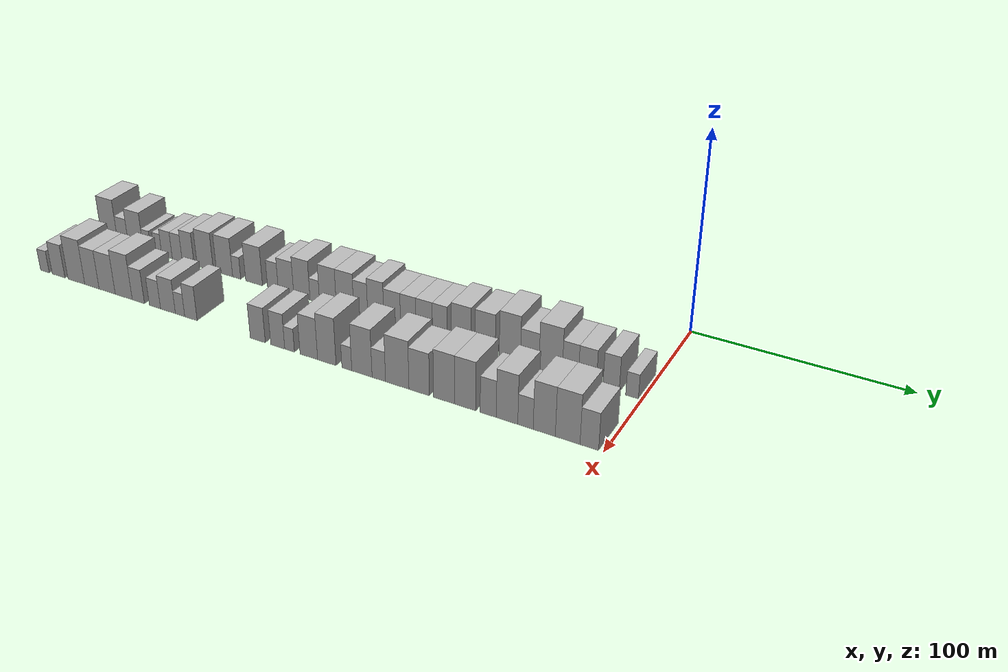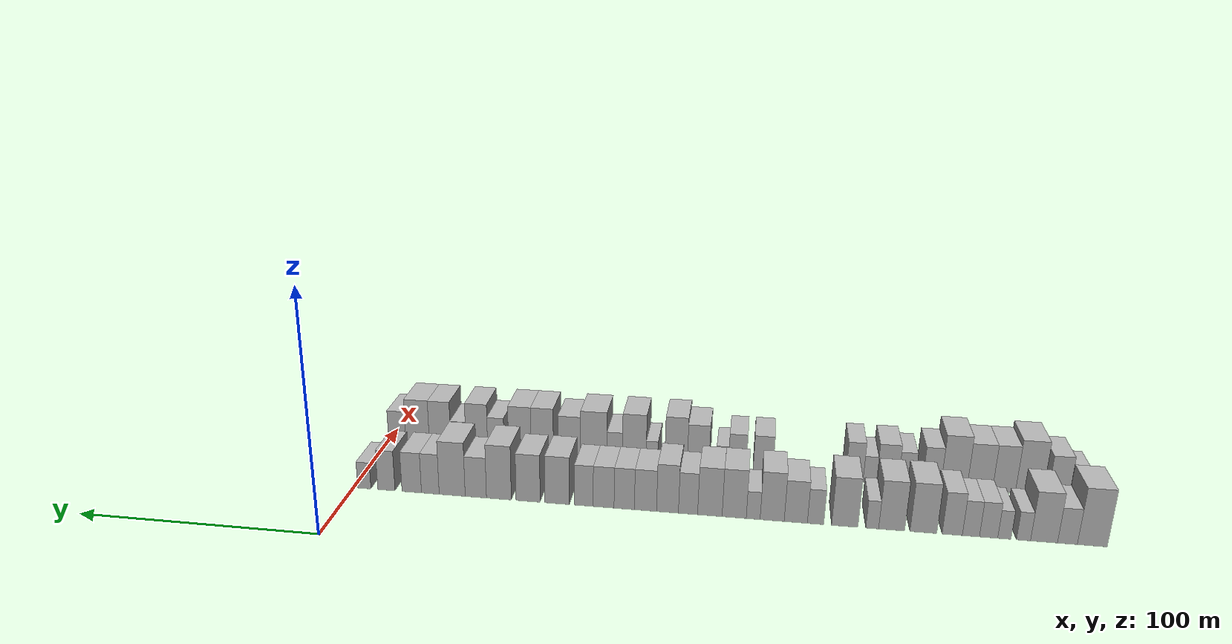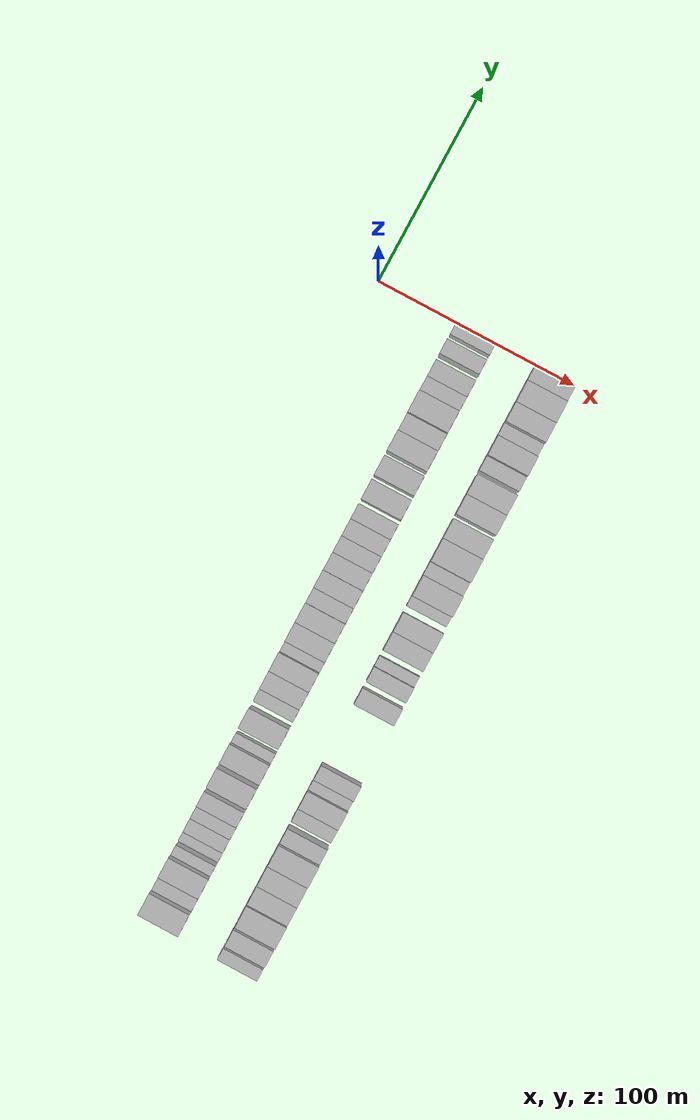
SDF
<sdf version="1.6">
 <world name="default">
  <model name="building_1">
   <static>1</static>
   <pose>50.0000 -291.6410 0 0.000000 0.000000 0.000000</pose>
   <link name="link">
    <pose>0 0 12.00 0 0 0</pose>
    <collision name="collision"><geometry><box><size>20.0000 10.7179 24.0000</size></box></geometry></collision>
    <visual name="visual">
     <cast_shadows>0</cast_shadows>
     <geometry><box><size>20.0000 10.7179 24.0000</size></box></geometry>
     <material>
      <script>
       <uri>model://HANNAS_wall/materials/scripts</uri>
       <uri>model://HANNAS_wall/materials/textures</uri>
       <name>vrc/HANNAS_wall</name>
      </script>
     </material>
    </visual>
   </link>
  </model>
  <model name="building_2">
   <static>1</static>
   <pose>50.0000 -282.6944 0 0.000000 0.000000 0.000000</pose>
   <link name="link">
    <pose>0 0 7.50 0 0 0</pose>
    <collision name="collision"><geometry><box><size>20.0000 7.1753 15.0000</size></box></geometry></collision>
    <visual name="visual">
     <cast_shadows>0</cast_shadows>
     <geometry><box><size>20.0000 7.1753 15.0000</size></box></geometry>
     <material>
      <script>
       <uri>model://HANNAS_wall/materials/scripts</uri>
       <uri>model://HANNAS_wall/materials/textures</uri>
       <name>vrc/HANNAS_wall</name>
      </script>
     </material>
    </visual>
   </link>
  </model>
  <model name="building_3">
   <static>1</static>
   <pose>50.0000 -274.2108 0 0.000000 0.000000 0.000000</pose>
   <link name="link">
    <pose>0 0 10.50 0 0 0</pose>
    <collision name="collision"><geometry><box><size>20.0000 9.7919 21.0000</size></box></geometry></collision>
    <visual name="visual">
     <cast_shadows>0</cast_shadows>
     <geometry><box><size>20.0000 9.7919 21.0000</size></box></geometry>
     <material>
      <script>
       <uri>model://HANNAS_wall/materials/scripts</uri>
       <uri>model://HANNAS_wall/materials/textures</uri>
       <name>vrc/HANNAS_wall</name>
      </script>
     </material>
    </visual>
   </link>
  </model>
  <model name="building_4">
   <static>1</static>
   <pose>50.0000 -266.7639 0 0.000000 0.000000 0.000000</pose>
   <link name="link">
    <pose>0 0 6.00 0 0 0</pose>
    <collision name="collision"><geometry><box><size>20.0000 5.1018 12.0000</size></box></geometry></collision>
    <visual name="visual">
     <cast_shadows>0</cast_shadows>
     <geometry><box><size>20.0000 5.1018 12.0000</size></box></geometry>
     <material>
      <script>
       <uri>model://HANNAS_wall/materials/scripts</uri>
       <uri>model://HANNAS_wall/materials/textures</uri>
       <name>vrc/HANNAS_wall</name>
      </script>
     </material>
    </visual>
   </link>
  </model>
  <model name="building_5">
   <static>1</static>
   <pose>50.0000 -259.7612 0 0.000000 0.000000 0.000000</pose>
   <link name="link">
    <pose>0 0 6.00 0 0 0</pose>
    <collision name="collision"><geometry><box><size>20.0000 4.9035 12.0000</size></box></geometry></collision>
    <visual name="visual">
     <cast_shadows>0</cast_shadows>
     <geometry><box><size>20.0000 4.9035 12.0000</size></box></geometry>
     <material>
      <script>
       <uri>model://HANNAS_wall/materials/scripts</uri>
       <uri>model://HANNAS_wall/materials/textures</uri>
       <name>vrc/HANNAS_wall</name>
      </script>
     </material>
    </visual>
   </link>
  </model>
  <model name="building_6">
   <static>1</static>
   <pose>50.0000 -253.9580 0 0.000000 0.000000 0.000000</pose>
   <link name="link">
    <pose>0 0 7.50 0 0 0</pose>
    <collision name="collision"><geometry><box><size>20.0000 6.7028 15.0000</size></box></geometry></collision>
    <visual name="visual">
     <cast_shadows>0</cast_shadows>
     <geometry><box><size>20.0000 6.7028 15.0000</size></box></geometry>
     <material>
      <script>
       <uri>model://HANNAS_wall/materials/scripts</uri>
       <uri>model://HANNAS_wall/materials/textures</uri>
       <name>vrc/HANNAS_wall</name>
      </script>
     </material>
    </visual>
   </link>
  </model>
  <model name="building_7">
   <static>1</static>
   <pose>50.0000 -247.4439 0 0.000000 0.000000 0.000000</pose>
   <link name="link">
    <pose>0 0 7.50 0 0 0</pose>
    <collision name="collision"><geometry><box><size>20.0000 6.3254 15.0000</size></box></geometry></collision>
    <visual name="visual">
     <cast_shadows>0</cast_shadows>
     <geometry><box><size>20.0000 6.3254 15.0000</size></box></geometry>
     <material>
      <script>
       <uri>model://HANNAS_wall/materials/scripts</uri>
       <uri>model://HANNAS_wall/materials/textures</uri>
       <name>vrc/HANNAS_wall</name>
      </script>
     </material>
    </visual>
   </link>
  </model>
  <model name="building_8">
   <static>1</static>
   <pose>50.0000 -240.5308 0 0.000000 0.000000 0.000000</pose>
   <link name="link">
    <pose>0 0 9.00 0 0 0</pose>
    <collision name="collision"><geometry><box><size>20.0000 7.5007 18.0000</size></box></geometry></collision>
    <visual name="visual">
     <cast_shadows>0</cast_shadows>
     <geometry><box><size>20.0000 7.5007 18.0000</size></box></geometry>
     <material>
      <script>
       <uri>model://HANNAS_wall/materials/scripts</uri>
       <uri>model://HANNAS_wall/materials/textures</uri>
       <name>vrc/HANNAS_wall</name>
      </script>
     </material>
    </visual>
   </link>
  </model>
  <model name="building_9">
   <static>1</static>
   <pose>50.0000 -229.7729 0 0.000000 0.000000 0.000000</pose>
   <link name="link">
    <pose>0 0 10.50 0 0 0</pose>
    <collision name="collision"><geometry><box><size>20.0000 10.0150 21.0000</size></box></geometry></collision>
    <visual name="visual">
     <cast_shadows>0</cast_shadows>
     <geometry><box><size>20.0000 10.0150 21.0000</size></box></geometry>
     <material>
      <script>
       <uri>model://HANNAS_wall/materials/scripts</uri>
       <uri>model://HANNAS_wall/materials/textures</uri>
       <name>vrc/HANNAS_wall</name>
      </script>
     </material>
    </visual>
   </link>
  </model>
  <model name="building_10">
   <static>1</static>
   <pose>50.0000 -217.8505 0 0.000000 0.000000 0.000000</pose>
   <link name="link">
    <pose>0 0 10.50 0 0 0</pose>
    <collision name="collision"><geometry><box><size>20.0000 9.8299 21.0000</size></box></geometry></collision>
    <visual name="visual">
     <cast_shadows>0</cast_shadows>
     <geometry><box><size>20.0000 9.8299 21.0000</size></box></geometry>
     <material>
      <script>
       <uri>model://HANNAS_wall/materials/scripts</uri>
       <uri>model://HANNAS_wall/materials/textures</uri>
       <name>vrc/HANNAS_wall</name>
      </script>
     </material>
    </visual>
   </link>
  </model>
  <model name="building_11">
   <static>1</static>
   <pose>50.0000 -210.5100 0 0.000000 0.000000 0.000000</pose>
   <link name="link">
    <pose>0 0 6.00 0 0 0</pose>
    <collision name="collision"><geometry><box><size>20.0000 4.8512 12.0000</size></box></geometry></collision>
    <visual name="visual">
     <cast_shadows>0</cast_shadows>
     <geometry><box><size>20.0000 4.8512 12.0000</size></box></geometry>
     <material>
      <script>
       <uri>model://HANNAS_wall/materials/scripts</uri>
       <uri>model://HANNAS_wall/materials/textures</uri>
       <name>vrc/HANNAS_wall</name>
      </script>
     </material>
    </visual>
   </link>
  </model>
  <model name="building_12">
   <static>1</static>
   <pose>50.0000 -200.0513 0 0.000000 0.000000 0.000000</pose>
   <link name="link">
    <pose>0 0 10.50 0 0 0</pose>
    <collision name="collision"><geometry><box><size>20.0000 10.0660 21.0000</size></box></geometry></collision>
    <visual name="visual">
     <cast_shadows>0</cast_shadows>
     <geometry><box><size>20.0000 10.0660 21.0000</size></box></geometry>
     <material>
      <script>
       <uri>model://HANNAS_wall/materials/scripts</uri>
       <uri>model://HANNAS_wall/materials/textures</uri>
       <name>vrc/HANNAS_wall</name>
      </script>
     </material>
    </visual>
   </link>
  </model>
  <model name="building_13">
   <static>1</static>
   <pose>50.0000 -188.8611 0 0.000000 0.000000 0.000000</pose>
   <link name="link">
    <pose>0 0 7.50 0 0 0</pose>
    <collision name="collision"><geometry><box><size>20.0000 6.3144 15.0000</size></box></geometry></collision>
    <visual name="visual">
     <cast_shadows>0</cast_shadows>
     <geometry><box><size>20.0000 6.3144 15.0000</size></box></geometry>
     <material>
      <script>
       <uri>model://HANNAS_wall/materials/scripts</uri>
       <uri>model://HANNAS_wall/materials/textures</uri>
       <name>vrc/HANNAS_wall</name>
      </script>
     </material>
    </visual>
   </link>
  </model>
  <model name="building_14">
   <static>1</static>
   <pose>50.0000 -181.2198 0 0.000000 0.000000 0.000000</pose>
   <link name="link">
    <pose>0 0 9.00 0 0 0</pose>
    <collision name="collision"><geometry><box><size>20.0000 8.9682 18.0000</size></box></geometry></collision>
    <visual name="visual">
     <cast_shadows>0</cast_shadows>
     <geometry><box><size>20.0000 8.9682 18.0000</size></box></geometry>
     <material>
      <script>
       <uri>model://HANNAS_wall/materials/scripts</uri>
       <uri>model://HANNAS_wall/materials/textures</uri>
       <name>vrc/HANNAS_wall</name>
      </script>
     </material>
    </visual>
   </link>
  </model>
  <model name="building_15">
   <static>1</static>
   <pose>50.0000 -172.0450 0 0.000000 0.000000 0.000000</pose>
   <link name="link">
    <pose>0 0 10.50 0 0 0</pose>
    <collision name="collision"><geometry><box><size>20.0000 9.3814 21.0000</size></box></geometry></collision>
    <visual name="visual">
     <cast_shadows>0</cast_shadows>
     <geometry><box><size>20.0000 9.3814 21.0000</size></box></geometry>
     <material>
      <script>
       <uri>model://HANNAS_wall/materials/scripts</uri>
       <uri>model://HANNAS_wall/materials/textures</uri>
       <name>vrc/HANNAS_wall</name>
      </script>
     </material>
    </visual>
   </link>
  </model>
  <model name="building_16">
   <static>1</static>
   <pose>50.0000 -164.6468 0 0.000000 0.000000 0.000000</pose>
   <link name="link">
    <pose>0 0 6.00 0 0 0</pose>
    <collision name="collision"><geometry><box><size>20.0000 5.4151 12.0000</size></box></geometry></collision>
    <visual name="visual">
     <cast_shadows>0</cast_shadows>
     <geometry><box><size>20.0000 5.4151 12.0000</size></box></geometry>
     <material>
      <script>
       <uri>model://HANNAS_wall/materials/scripts</uri>
       <uri>model://HANNAS_wall/materials/textures</uri>
       <name>vrc/HANNAS_wall</name>
      </script>
     </material>
    </visual>
   </link>
  </model>
  <model name="building_17">
   <static>1</static>
   <pose>50.0000 -157.1940 0 0.000000 0.000000 0.000000</pose>
   <link name="link">
    <pose>0 0 10.50 0 0 0</pose>
    <collision name="collision"><geometry><box><size>20.0000 9.4905 21.0000</size></box></geometry></collision>
    <visual name="visual">
     <cast_shadows>0</cast_shadows>
     <geometry><box><size>20.0000 9.4905 21.0000</size></box></geometry>
     <material>
      <script>
       <uri>model://HANNAS_wall/materials/scripts</uri>
       <uri>model://HANNAS_wall/materials/textures</uri>
       <name>vrc/HANNAS_wall</name>
      </script>
     </material>
    </visual>
   </link>
  </model>
  <model name="building_18">
   <static>1</static>
   <pose>50.0000 -147.5965 0 0.000000 0.000000 0.000000</pose>
   <link name="link">
    <pose>0 0 10.50 0 0 0</pose>
    <collision name="collision"><geometry><box><size>20.0000 9.7044 21.0000</size></box></geometry></collision>
    <visual name="visual">
     <cast_shadows>0</cast_shadows>
     <geometry><box><size>20.0000 9.7044 21.0000</size></box></geometry>
     <material>
      <script>
       <uri>model://HANNAS_wall/materials/scripts</uri>
       <uri>model://HANNAS_wall/materials/textures</uri>
       <name>vrc/HANNAS_wall</name>
      </script>
     </material>
    </visual>
   </link>
  </model>
  <model name="building_19">
   <static>1</static>
   <pose>50.0000 -138.9264 0 0.000000 0.000000 0.000000</pose>
   <link name="link">
    <pose>0 0 9.00 0 0 0</pose>
    <collision name="collision"><geometry><box><size>20.0000 7.6358 18.0000</size></box></geometry></collision>
    <visual name="visual">
     <cast_shadows>0</cast_shadows>
     <geometry><box><size>20.0000 7.6358 18.0000</size></box></geometry>
     <material>
      <script>
       <uri>model://HANNAS_wall/materials/scripts</uri>
       <uri>model://HANNAS_wall/materials/textures</uri>
       <name>vrc/HANNAS_wall</name>
      </script>
     </material>
    </visual>
   </link>
  </model>
  <model name="building_20">
   <static>1</static>
   <pose>50.0000 -130.7200 0 0.000000 0.000000 0.000000</pose>
   <link name="link">
    <pose>0 0 10.50 0 0 0</pose>
    <collision name="collision"><geometry><box><size>20.0000 8.7770 21.0000</size></box></geometry></collision>
    <visual name="visual">
     <cast_shadows>0</cast_shadows>
     <geometry><box><size>20.0000 8.7770 21.0000</size></box></geometry>
     <material>
      <script>
       <uri>model://HANNAS_wall/materials/scripts</uri>
       <uri>model://HANNAS_wall/materials/textures</uri>
       <name>vrc/HANNAS_wall</name>
      </script>
     </material>
    </visual>
   </link>
  </model>
  <model name="building_21">
   <static>1</static>
   <pose>50.0000 -121.8739 0 0.000000 0.000000 0.000000</pose>
   <link name="link">
    <pose>0 0 9.00 0 0 0</pose>
    <collision name="collision"><geometry><box><size>20.0000 8.9151 18.0000</size></box></geometry></collision>
    <visual name="visual">
     <cast_shadows>0</cast_shadows>
     <geometry><box><size>20.0000 8.9151 18.0000</size></box></geometry>
     <material>
      <script>
       <uri>model://HANNAS_wall/materials/scripts</uri>
       <uri>model://HANNAS_wall/materials/textures</uri>
       <name>vrc/HANNAS_wall</name>
      </script>
     </material>
    </visual>
   </link>
  </model>
  <model name="building_22">
   <static>1</static>
   <pose>50.0000 -113.3084 0 0.000000 0.000000 0.000000</pose>
   <link name="link">
    <pose>0 0 9.00 0 0 0</pose>
    <collision name="collision"><geometry><box><size>20.0000 8.2160 18.0000</size></box></geometry></collision>
    <visual name="visual">
     <cast_shadows>0</cast_shadows>
     <geometry><box><size>20.0000 8.2160 18.0000</size></box></geometry>
     <material>
      <script>
       <uri>model://HANNAS_wall/materials/scripts</uri>
       <uri>model://HANNAS_wall/materials/textures</uri>
       <name>vrc/HANNAS_wall</name>
      </script>
     </material>
    </visual>
   </link>
  </model>
  <model name="building_23">
   <static>1</static>
   <pose>50.0000 -104.9316 0 0.000000 0.000000 0.000000</pose>
   <link name="link">
    <pose>0 0 9.00 0 0 0</pose>
    <collision name="collision"><geometry><box><size>20.0000 8.5375 18.0000</size></box></geometry></collision>
    <visual name="visual">
     <cast_shadows>0</cast_shadows>
     <geometry><box><size>20.0000 8.5375 18.0000</size></box></geometry>
     <material>
      <script>
       <uri>model://HANNAS_wall/materials/scripts</uri>
       <uri>model://HANNAS_wall/materials/textures</uri>
       <name>vrc/HANNAS_wall</name>
      </script>
     </material>
    </visual>
   </link>
  </model>
  <model name="building_24">
   <static>1</static>
   <pose>50.0000 -96.8348 0 0.000000 0.000000 0.000000</pose>
   <link name="link">
    <pose>0 0 9.00 0 0 0</pose>
    <collision name="collision"><geometry><box><size>20.0000 7.6561 18.0000</size></box></geometry></collision>
    <visual name="visual">
     <cast_shadows>0</cast_shadows>
     <geometry><box><size>20.0000 7.6561 18.0000</size></box></geometry>
     <material>
      <script>
       <uri>model://HANNAS_wall/materials/scripts</uri>
       <uri>model://HANNAS_wall/materials/textures</uri>
       <name>vrc/HANNAS_wall</name>
      </script>
     </material>
    </visual>
   </link>
  </model>
  <model name="building_25">
   <static>1</static>
   <pose>50.0000 -85.9560 0 0.000000 0.000000 0.000000</pose>
   <link name="link">
    <pose>0 0 10.50 0 0 0</pose>
    <collision name="collision"><geometry><box><size>20.0000 10.1015 21.0000</size></box></geometry></collision>
    <visual name="visual">
     <cast_shadows>0</cast_shadows>
     <geometry><box><size>20.0000 10.1015 21.0000</size></box></geometry>
     <material>
      <script>
       <uri>model://HANNAS_wall/materials/scripts</uri>
       <uri>model://HANNAS_wall/materials/textures</uri>
       <name>vrc/HANNAS_wall</name>
      </script>
     </material>
    </visual>
   </link>
  </model>
  <model name="building_26">
   <static>1</static>
   <pose>50.0000 -73.9117 0 0.000000 0.000000 0.000000</pose>
   <link name="link">
    <pose>0 0 10.50 0 0 0</pose>
    <collision name="collision"><geometry><box><size>20.0000 9.9872 21.0000</size></box></geometry></collision>
    <visual name="visual">
     <cast_shadows>0</cast_shadows>
     <geometry><box><size>20.0000 9.9872 21.0000</size></box></geometry>
     <material>
      <script>
       <uri>model://HANNAS_wall/materials/scripts</uri>
       <uri>model://HANNAS_wall/materials/textures</uri>
       <name>vrc/HANNAS_wall</name>
      </script>
     </material>
    </visual>
   </link>
  </model>
  <model name="building_27">
   <static>1</static>
   <pose>50.0000 -61.7205 0 0.000000 0.000000 0.000000</pose>
   <link name="link">
    <pose>0 0 12.00 0 0 0</pose>
    <collision name="collision"><geometry><box><size>20.0000 10.3952 24.0000</size></box></geometry></collision>
    <visual name="visual">
     <cast_shadows>0</cast_shadows>
     <geometry><box><size>20.0000 10.3952 24.0000</size></box></geometry>
     <material>
      <script>
       <uri>model://HANNAS_wall/materials/scripts</uri>
       <uri>model://HANNAS_wall/materials/textures</uri>
       <name>vrc/HANNAS_wall</name>
      </script>
     </material>
    </visual>
   </link>
  </model>
  <model name="building_28">
   <static>1</static>
   <pose>50.0000 -52.0402 0 0.000000 0.000000 0.000000</pose>
   <link name="link">
    <pose>0 0 9.00 0 0 0</pose>
    <collision name="collision"><geometry><box><size>20.0000 8.9653 18.0000</size></box></geometry></collision>
    <visual name="visual">
     <cast_shadows>0</cast_shadows>
     <geometry><box><size>20.0000 8.9653 18.0000</size></box></geometry>
     <material>
      <script>
       <uri>model://HANNAS_wall/materials/scripts</uri>
       <uri>model://HANNAS_wall/materials/textures</uri>
       <name>vrc/HANNAS_wall</name>
      </script>
     </material>
    </visual>
   </link>
  </model>
  <model name="building_29">
   <static>1</static>
   <pose>50.0000 -42.0420 0 0.000000 0.000000 0.000000</pose>
   <link name="link">
    <pose>0 0 12.00 0 0 0</pose>
    <collision name="collision"><geometry><box><size>20.0000 11.0312 24.0000</size></box></geometry></collision>
    <visual name="visual">
     <cast_shadows>0</cast_shadows>
     <geometry><box><size>20.0000 11.0312 24.0000</size></box></geometry>
     <material>
      <script>
       <uri>model://HANNAS_wall/materials/scripts</uri>
       <uri>model://HANNAS_wall/materials/textures</uri>
       <name>vrc/HANNAS_wall</name>
      </script>
     </material>
    </visual>
   </link>
  </model>
  <model name="building_30">
   <static>1</static>
   <pose>50.0000 -32.7494 0 0.000000 0.000000 0.000000</pose>
   <link name="link">
    <pose>0 0 9.00 0 0 0</pose>
    <collision name="collision"><geometry><box><size>20.0000 7.5539 18.0000</size></box></geometry></collision>
    <visual name="visual">
     <cast_shadows>0</cast_shadows>
     <geometry><box><size>20.0000 7.5539 18.0000</size></box></geometry>
     <material>
      <script>
       <uri>model://HANNAS_wall/materials/scripts</uri>
       <uri>model://HANNAS_wall/materials/textures</uri>
       <name>vrc/HANNAS_wall</name>
      </script>
     </material>
    </visual>
   </link>
  </model>
  <model name="building_31">
   <static>1</static>
   <pose>50.0000 -24.8039 0 0.000000 0.000000 0.000000</pose>
   <link name="link">
    <pose>0 0 9.00 0 0 0</pose>
    <collision name="collision"><geometry><box><size>20.0000 8.3371 18.0000</size></box></geometry></collision>
    <visual name="visual">
     <cast_shadows>0</cast_shadows>
     <geometry><box><size>20.0000 8.3371 18.0000</size></box></geometry>
     <material>
      <script>
       <uri>model://HANNAS_wall/materials/scripts</uri>
       <uri>model://HANNAS_wall/materials/textures</uri>
       <name>vrc/HANNAS_wall</name>
      </script>
     </material>
    </visual>
   </link>
  </model>
  <model name="building_32">
   <static>1</static>
   <pose>50.0000 -13.9315 0 0.000000 0.000000 0.000000</pose>
   <link name="link">
    <pose>0 0 9.00 0 0 0</pose>
    <collision name="collision"><geometry><box><size>20.0000 7.4077 18.0000</size></box></geometry></collision>
    <visual name="visual">
     <cast_shadows>0</cast_shadows>
     <geometry><box><size>20.0000 7.4077 18.0000</size></box></geometry>
     <material>
      <script>
       <uri>model://HANNAS_wall/materials/scripts</uri>
       <uri>model://HANNAS_wall/materials/textures</uri>
       <name>vrc/HANNAS_wall</name>
      </script>
     </material>
    </visual>
   </link>
  </model>
  <model name="building_33">
   <static>1</static>
   <pose>50.0000 -4.3813 0 0.000000 0.000000 0.000000</pose>
   <link name="link">
    <pose>0 0 6.00 0 0 0</pose>
    <collision name="collision"><geometry><box><size>20.0000 5.6928 12.0000</size></box></geometry></collision>
    <visual name="visual">
     <cast_shadows>0</cast_shadows>
     <geometry><box><size>20.0000 5.6928 12.0000</size></box></geometry>
     <material>
      <script>
       <uri>model://HANNAS_wall/materials/scripts</uri>
       <uri>model://HANNAS_wall/materials/textures</uri>
       <name>vrc/HANNAS_wall</name>
      </script>
     </material>
    </visual>
   </link>
  </model>
  <model name="building_67">
   <static>1</static>
   <pose>90.0000 -297.1311 0 0.000000 0.000000 0.000000</pose>
   <link name="link">
    <pose>0 0 6.00 0 0 0</pose>
    <collision name="collision"><geometry><box><size>20.0000 5.7378 12.0000</size></box></geometry></collision>
    <visual name="visual">
     <cast_shadows>0</cast_shadows>
     <geometry><box><size>20.0000 5.7378 12.0000</size></box></geometry>
     <material>
      <script>
       <uri>model://HANNAS_wall/materials/scripts</uri>
       <uri>model://HANNAS_wall/materials/textures</uri>
       <name>vrc/HANNAS_wall</name>
      </script>
     </material>
    </visual>
   </link>
  </model>
  <model name="building_68">
   <static>1</static>
   <pose>90.0000 -288.0945 0 0.000000 0.000000 0.000000</pose>
   <link name="link">
    <pose>0 0 9.00 0 0 0</pose>
    <collision name="collision"><geometry><box><size>20.0000 8.3353 18.0000</size></box></geometry></collision>
    <visual name="visual">
     <cast_shadows>0</cast_shadows>
     <geometry><box><size>20.0000 8.3353 18.0000</size></box></geometry>
     <material>
      <script>
       <uri>model://HANNAS_wall/materials/scripts</uri>
       <uri>model://HANNAS_wall/materials/textures</uri>
       <name>vrc/HANNAS_wall</name>
      </script>
     </material>
    </visual>
   </link>
  </model>
  <model name="building_69">
   <static>1</static>
   <pose>90.0000 -276.5232 0 0.000000 0.000000 0.000000</pose>
   <link name="link">
    <pose>0 0 12.00 0 0 0</pose>
    <collision name="collision"><geometry><box><size>20.0000 10.8073 24.0000</size></box></geometry></collision>
    <visual name="visual">
     <cast_shadows>0</cast_shadows>
     <geometry><box><size>20.0000 10.8073 24.0000</size></box></geometry>
     <material>
      <script>
       <uri>model://HANNAS_wall/materials/scripts</uri>
       <uri>model://HANNAS_wall/materials/textures</uri>
       <name>vrc/HANNAS_wall</name>
      </script>
     </material>
    </visual>
   </link>
  </model>
  <model name="building_70">
   <static>1</static>
   <pose>90.0000 -266.5531 0 0.000000 0.000000 0.000000</pose>
   <link name="link">
    <pose>0 0 10.50 0 0 0</pose>
    <collision name="collision"><geometry><box><size>20.0000 9.1330 21.0000</size></box></geometry></collision>
    <visual name="visual">
     <cast_shadows>0</cast_shadows>
     <geometry><box><size>20.0000 9.1330 21.0000</size></box></geometry>
     <material>
      <script>
       <uri>model://HANNAS_wall/materials/scripts</uri>
       <uri>model://HANNAS_wall/materials/textures</uri>
       <name>vrc/HANNAS_wall</name>
      </script>
     </material>
    </visual>
   </link>
  </model>
  <model name="building_71">
   <static>1</static>
   <pose>90.0000 -256.9113 0 0.000000 0.000000 0.000000</pose>
   <link name="link">
    <pose>0 0 10.50 0 0 0</pose>
    <collision name="collision"><geometry><box><size>20.0000 10.1505 21.0000</size></box></geometry></collision>
    <visual name="visual">
     <cast_shadows>0</cast_shadows>
     <geometry><box><size>20.0000 10.1505 21.0000</size></box></geometry>
     <material>
      <script>
       <uri>model://HANNAS_wall/materials/scripts</uri>
       <uri>model://HANNAS_wall/materials/textures</uri>
       <name>vrc/HANNAS_wall</name>
      </script>
     </material>
    </visual>
   </link>
  </model>
  <model name="building_72">
   <static>1</static>
   <pose>90.0000 -246.5695 0 0.000000 0.000000 0.000000</pose>
   <link name="link">
    <pose>0 0 12.00 0 0 0</pose>
    <collision name="collision"><geometry><box><size>20.0000 10.5331 24.0000</size></box></geometry></collision>
    <visual name="visual">
     <cast_shadows>0</cast_shadows>
     <geometry><box><size>20.0000 10.5331 24.0000</size></box></geometry>
     <material>
      <script>
       <uri>model://HANNAS_wall/materials/scripts</uri>
       <uri>model://HANNAS_wall/materials/textures</uri>
       <name>vrc/HANNAS_wall</name>
      </script>
     </material>
    </visual>
   </link>
  </model>
  <model name="building_73">
   <static>1</static>
   <pose>90.0000 -237.5596 0 0.000000 0.000000 0.000000</pose>
   <link name="link">
    <pose>0 0 9.00 0 0 0</pose>
    <collision name="collision"><geometry><box><size>20.0000 7.4867 18.0000</size></box></geometry></collision>
    <visual name="visual">
     <cast_shadows>0</cast_shadows>
     <geometry><box><size>20.0000 7.4867 18.0000</size></box></geometry>
     <material>
      <script>
       <uri>model://HANNAS_wall/materials/scripts</uri>
       <uri>model://HANNAS_wall/materials/textures</uri>
       <name>vrc/HANNAS_wall</name>
      </script>
     </material>
    </visual>
   </link>
  </model>
  <model name="building_74">
   <static>1</static>
   <pose>90.0000 -227.4461 0 0.000000 0.000000 0.000000</pose>
   <link name="link">
    <pose>0 0 7.50 0 0 0</pose>
    <collision name="collision"><geometry><box><size>20.0000 6.7405 15.0000</size></box></geometry></collision>
    <visual name="visual">
     <cast_shadows>0</cast_shadows>
     <geometry><box><size>20.0000 6.7405 15.0000</size></box></geometry>
     <material>
      <script>
       <uri>model://HANNAS_wall/materials/scripts</uri>
       <uri>model://HANNAS_wall/materials/textures</uri>
       <name>vrc/HANNAS_wall</name>
      </script>
     </material>
    </visual>
   </link>
  </model>
  <model name="building_75">
   <static>1</static>
   <pose>90.0000 -219.6534 0 0.000000 0.000000 0.000000</pose>
   <link name="link">
    <pose>0 0 9.00 0 0 0</pose>
    <collision name="collision"><geometry><box><size>20.0000 8.8448 18.0000</size></box></geometry></collision>
    <visual name="visual">
     <cast_shadows>0</cast_shadows>
     <geometry><box><size>20.0000 8.8448 18.0000</size></box></geometry>
     <material>
      <script>
       <uri>model://HANNAS_wall/materials/scripts</uri>
       <uri>model://HANNAS_wall/materials/textures</uri>
       <name>vrc/HANNAS_wall</name>
      </script>
     </material>
    </visual>
   </link>
  </model>
  <model name="building_76">
   <static>1</static>
   <pose>90.0000 -212.4755 0 0.000000 0.000000 0.000000</pose>
   <link name="link">
    <pose>0 0 6.00 0 0 0</pose>
    <collision name="collision"><geometry><box><size>20.0000 5.5110 12.0000</size></box></geometry></collision>
    <visual name="visual">
     <cast_shadows>0</cast_shadows>
     <geometry><box><size>20.0000 5.5110 12.0000</size></box></geometry>
     <material>
      <script>
       <uri>model://HANNAS_wall/materials/scripts</uri>
       <uri>model://HANNAS_wall/materials/textures</uri>
       <name>vrc/HANNAS_wall</name>
      </script>
     </material>
    </visual>
   </link>
  </model>
  <model name="building_77">
   <static>1</static>
   <pose>90.0000 -206.0937 0 0.000000 0.000000 0.000000</pose>
   <link name="link">
    <pose>0 0 9.00 0 0 0</pose>
    <collision name="collision"><geometry><box><size>20.0000 7.2525 18.0000</size></box></geometry></collision>
    <visual name="visual">
     <cast_shadows>0</cast_shadows>
     <geometry><box><size>20.0000 7.2525 18.0000</size></box></geometry>
     <material>
      <script>
       <uri>model://HANNAS_wall/materials/scripts</uri>
       <uri>model://HANNAS_wall/materials/textures</uri>
       <name>vrc/HANNAS_wall</name>
      </script>
     </material>
    </visual>
   </link>
  </model>
  <model name="building_78">
   <static>1</static>
   <pose>90.0000 -167.9980 0 0.000000 0.000000 0.000000</pose>
   <link name="link">
    <pose>0 0 9.00 0 0 0</pose>
    <collision name="collision"><geometry><box><size>20.0000 8.3130 18.0000</size></box></geometry></collision>
    <visual name="visual">
     <cast_shadows>0</cast_shadows>
     <geometry><box><size>20.0000 8.3130 18.0000</size></box></geometry>
     <material>
      <script>
       <uri>model://HANNAS_wall/materials/scripts</uri>
       <uri>model://HANNAS_wall/materials/textures</uri>
       <name>vrc/HANNAS_wall</name>
      </script>
     </material>
    </visual>
   </link>
  </model>
  <model name="building_79">
   <static>1</static>
   <pose>90.0000 -157.0400 0 0.000000 0.000000 0.000000</pose>
   <link name="link">
    <pose>0 0 9.00 0 0 0</pose>
    <collision name="collision"><geometry><box><size>20.0000 7.6031 18.0000</size></box></geometry></collision>
    <visual name="visual">
     <cast_shadows>0</cast_shadows>
     <geometry><box><size>20.0000 7.6031 18.0000</size></box></geometry>
     <material>
      <script>
       <uri>model://HANNAS_wall/materials/scripts</uri>
       <uri>model://HANNAS_wall/materials/textures</uri>
       <name>vrc/HANNAS_wall</name>
      </script>
     </material>
    </visual>
   </link>
  </model>
  <model name="building_80">
   <static>1</static>
   <pose>90.0000 -150.6163 0 0.000000 0.000000 0.000000</pose>
   <link name="link">
    <pose>0 0 6.00 0 0 0</pose>
    <collision name="collision"><geometry><box><size>20.0000 5.2442 12.0000</size></box></geometry></collision>
    <visual name="visual">
     <cast_shadows>0</cast_shadows>
     <geometry><box><size>20.0000 5.2442 12.0000</size></box></geometry>
     <material>
      <script>
       <uri>model://HANNAS_wall/materials/scripts</uri>
       <uri>model://HANNAS_wall/materials/textures</uri>
       <name>vrc/HANNAS_wall</name>
      </script>
     </material>
    </visual>
   </link>
  </model>
  <model name="building_81">
   <static>1</static>
   <pose>90.0000 -140.3341 0 0.000000 0.000000 0.000000</pose>
   <link name="link">
    <pose>0 0 10.50 0 0 0</pose>
    <collision name="collision"><geometry><box><size>20.0000 9.3203 21.0000</size></box></geometry></collision>
    <visual name="visual">
     <cast_shadows>0</cast_shadows>
     <geometry><box><size>20.0000 9.3203 21.0000</size></box></geometry>
     <material>
      <script>
       <uri>model://HANNAS_wall/materials/scripts</uri>
       <uri>model://HANNAS_wall/materials/textures</uri>
       <name>vrc/HANNAS_wall</name>
      </script>
     </material>
    </visual>
   </link>
  </model>
  <model name="building_82">
   <static>1</static>
   <pose>90.0000 -130.8270 0 0.000000 0.000000 0.000000</pose>
   <link name="link">
    <pose>0 0 12.00 0 0 0</pose>
    <collision name="collision"><geometry><box><size>20.0000 9.6938 24.0000</size></box></geometry></collision>
    <visual name="visual">
     <cast_shadows>0</cast_shadows>
     <geometry><box><size>20.0000 9.6938 24.0000</size></box></geometry>
     <material>
      <script>
       <uri>model://HANNAS_wall/materials/scripts</uri>
       <uri>model://HANNAS_wall/materials/textures</uri>
       <name>vrc/HANNAS_wall</name>
      </script>
     </material>
    </visual>
   </link>
  </model>
  <model name="building_83">
   <static>1</static>
   <pose>90.0000 -120.4306 0 0.000000 0.000000 0.000000</pose>
   <link name="link">
    <pose>0 0 6.00 0 0 0</pose>
    <collision name="collision"><geometry><box><size>20.0000 5.0991 12.0000</size></box></geometry></collision>
    <visual name="visual">
     <cast_shadows>0</cast_shadows>
     <geometry><box><size>20.0000 5.0991 12.0000</size></box></geometry>
     <material>
      <script>
       <uri>model://HANNAS_wall/materials/scripts</uri>
       <uri>model://HANNAS_wall/materials/textures</uri>
       <name>vrc/HANNAS_wall</name>
      </script>
     </material>
    </visual>
   </link>
  </model>
  <model name="building_84">
   <static>1</static>
   <pose>90.0000 -112.7060 0 0.000000 0.000000 0.000000</pose>
   <link name="link">
    <pose>0 0 12.00 0 0 0</pose>
    <collision name="collision"><geometry><box><size>20.0000 10.3501 24.0000</size></box></geometry></collision>
    <visual name="visual">
     <cast_shadows>0</cast_shadows>
     <geometry><box><size>20.0000 10.3501 24.0000</size></box></geometry>
     <material>
      <script>
       <uri>model://HANNAS_wall/materials/scripts</uri>
       <uri>model://HANNAS_wall/materials/textures</uri>
       <name>vrc/HANNAS_wall</name>
      </script>
     </material>
    </visual>
   </link>
  </model>
  <model name="building_85">
   <static>1</static>
   <pose>90.0000 -104.1391 0 0.000000 0.000000 0.000000</pose>
   <link name="link">
    <pose>0 0 7.50 0 0 0</pose>
    <collision name="collision"><geometry><box><size>20.0000 6.7837 15.0000</size></box></geometry></collision>
    <visual name="visual">
     <cast_shadows>0</cast_shadows>
     <geometry><box><size>20.0000 6.7837 15.0000</size></box></geometry>
     <material>
      <script>
       <uri>model://HANNAS_wall/materials/scripts</uri>
       <uri>model://HANNAS_wall/materials/textures</uri>
       <name>vrc/HANNAS_wall</name>
      </script>
     </material>
    </visual>
   </link>
  </model>
  <model name="building_86">
   <static>1</static>
   <pose>90.0000 -94.9474 0 0.000000 0.000000 0.000000</pose>
   <link name="link">
    <pose>0 0 12.00 0 0 0</pose>
    <collision name="collision"><geometry><box><size>20.0000 11.5998 24.0000</size></box></geometry></collision>
    <visual name="visual">
     <cast_shadows>0</cast_shadows>
     <geometry><box><size>20.0000 11.5998 24.0000</size></box></geometry>
     <material>
      <script>
       <uri>model://HANNAS_wall/materials/scripts</uri>
       <uri>model://HANNAS_wall/materials/textures</uri>
       <name>vrc/HANNAS_wall</name>
      </script>
     </material>
    </visual>
   </link>
  </model>
  <model name="building_87">
   <static>1</static>
   <pose>90.0000 -84.1530 0 0.000000 0.000000 0.000000</pose>
   <link name="link">
    <pose>0 0 10.50 0 0 0</pose>
    <collision name="collision"><geometry><box><size>20.0000 9.9889 21.0000</size></box></geometry></collision>
    <visual name="visual">
     <cast_shadows>0</cast_shadows>
     <geometry><box><size>20.0000 9.9889 21.0000</size></box></geometry>
     <material>
      <script>
       <uri>model://HANNAS_wall/materials/scripts</uri>
       <uri>model://HANNAS_wall/materials/textures</uri>
       <name>vrc/HANNAS_wall</name>
      </script>
     </material>
    </visual>
   </link>
  </model>
  <model name="building_88">
   <static>1</static>
   <pose>90.0000 -72.1687 0 0.000000 0.000000 0.000000</pose>
   <link name="link">
    <pose>0 0 12.00 0 0 0</pose>
    <collision name="collision"><geometry><box><size>20.0000 9.9798 24.0000</size></box></geometry></collision>
    <visual name="visual">
     <cast_shadows>0</cast_shadows>
     <geometry><box><size>20.0000 9.9798 24.0000</size></box></geometry>
     <material>
      <script>
       <uri>model://HANNAS_wall/materials/scripts</uri>
       <uri>model://HANNAS_wall/materials/textures</uri>
       <name>vrc/HANNAS_wall</name>
      </script>
     </material>
    </visual>
   </link>
  </model>
  <model name="building_89">
   <static>1</static>
   <pose>90.0000 -62.1330 0 0.000000 0.000000 0.000000</pose>
   <link name="link">
    <pose>0 0 12.00 0 0 0</pose>
    <collision name="collision"><geometry><box><size>20.0000 10.0917 24.0000</size></box></geometry></collision>
    <visual name="visual">
     <cast_shadows>0</cast_shadows>
     <geometry><box><size>20.0000 10.0917 24.0000</size></box></geometry>
     <material>
      <script>
       <uri>model://HANNAS_wall/materials/scripts</uri>
       <uri>model://HANNAS_wall/materials/textures</uri>
       <name>vrc/HANNAS_wall</name>
      </script>
     </material>
    </visual>
   </link>
  </model>
  <model name="building_90">
   <static>1</static>
   <pose>90.0000 -51.3672 0 0.000000 0.000000 0.000000</pose>
   <link name="link">
    <pose>0 0 9.00 0 0 0</pose>
    <collision name="collision"><geometry><box><size>20.0000 7.4399 18.0000</size></box></geometry></collision>
    <visual name="visual">
     <cast_shadows>0</cast_shadows>
     <geometry><box><size>20.0000 7.4399 18.0000</size></box></geometry>
     <material>
      <script>
       <uri>model://HANNAS_wall/materials/scripts</uri>
       <uri>model://HANNAS_wall/materials/textures</uri>
       <name>vrc/HANNAS_wall</name>
      </script>
     </material>
    </visual>
   </link>
  </model>
  <model name="building_91">
   <static>1</static>
   <pose>90.0000 -42.7338 0 0.000000 0.000000 0.000000</pose>
   <link name="link">
    <pose>0 0 12.00 0 0 0</pose>
    <collision name="collision"><geometry><box><size>20.0000 9.8268 24.0000</size></box></geometry></collision>
    <visual name="visual">
     <cast_shadows>0</cast_shadows>
     <geometry><box><size>20.0000 9.8268 24.0000</size></box></geometry>
     <material>
      <script>
       <uri>model://HANNAS_wall/materials/scripts</uri>
       <uri>model://HANNAS_wall/materials/textures</uri>
       <name>vrc/HANNAS_wall</name>
      </script>
     </material>
    </visual>
   </link>
  </model>
  <model name="building_92">
   <static>1</static>
   <pose>90.0000 -34.3523 0 0.000000 0.000000 0.000000</pose>
   <link name="link">
    <pose>0 0 7.50 0 0 0</pose>
    <collision name="collision"><geometry><box><size>20.0000 6.9364 15.0000</size></box></geometry></collision>
    <visual name="visual">
     <cast_shadows>0</cast_shadows>
     <geometry><box><size>20.0000 6.9364 15.0000</size></box></geometry>
     <material>
      <script>
       <uri>model://HANNAS_wall/materials/scripts</uri>
       <uri>model://HANNAS_wall/materials/textures</uri>
       <name>vrc/HANNAS_wall</name>
      </script>
     </material>
    </visual>
   </link>
  </model>
  <model name="building_93">
   <static>1</static>
   <pose>90.0000 -25.9668 0 0.000000 0.000000 0.000000</pose>
   <link name="link">
    <pose>0 0 12.00 0 0 0</pose>
    <collision name="collision"><geometry><box><size>20.0000 9.8345 24.0000</size></box></geometry></collision>
    <visual name="visual">
     <cast_shadows>0</cast_shadows>
     <geometry><box><size>20.0000 9.8345 24.0000</size></box></geometry>
     <material>
      <script>
       <uri>model://HANNAS_wall/materials/scripts</uri>
       <uri>model://HANNAS_wall/materials/textures</uri>
       <name>vrc/HANNAS_wall</name>
      </script>
     </material>
    </visual>
   </link>
  </model>
  <model name="building_94">
   <static>1</static>
   <pose>90.0000 -15.6514 0 0.000000 0.000000 0.000000</pose>
   <link name="link">
    <pose>0 0 12.00 0 0 0</pose>
    <collision name="collision"><geometry><box><size>20.0000 10.7964 24.0000</size></box></geometry></collision>
    <visual name="visual">
     <cast_shadows>0</cast_shadows>
     <geometry><box><size>20.0000 10.7964 24.0000</size></box></geometry>
     <material>
      <script>
       <uri>model://HANNAS_wall/materials/scripts</uri>
       <uri>model://HANNAS_wall/materials/textures</uri>
       <name>vrc/HANNAS_wall</name>
      </script>
     </material>
    </visual>
   </link>
  </model>
  <model name="building_95">
   <static>1</static>
   <pose>90.0000 -6.2441 0 0.000000 0.000000 0.000000</pose>
   <link name="link">
    <pose>0 0 9.00 0 0 0</pose>
    <collision name="collision"><geometry><box><size>20.0000 8.0181 18.0000</size></box></geometry></collision>
    <visual name="visual">
     <cast_shadows>0</cast_shadows>
     <geometry><box><size>20.0000 8.0181 18.0000</size></box></geometry>
     <material>
      <script>
       <uri>model://HANNAS_wall/materials/scripts</uri>
       <uri>model://HANNAS_wall/materials/textures</uri>
       <name>vrc/HANNAS_wall</name>
      </script>
     </material>
    </visual>
   </link>
  </model>
 </world>
</sdf>
